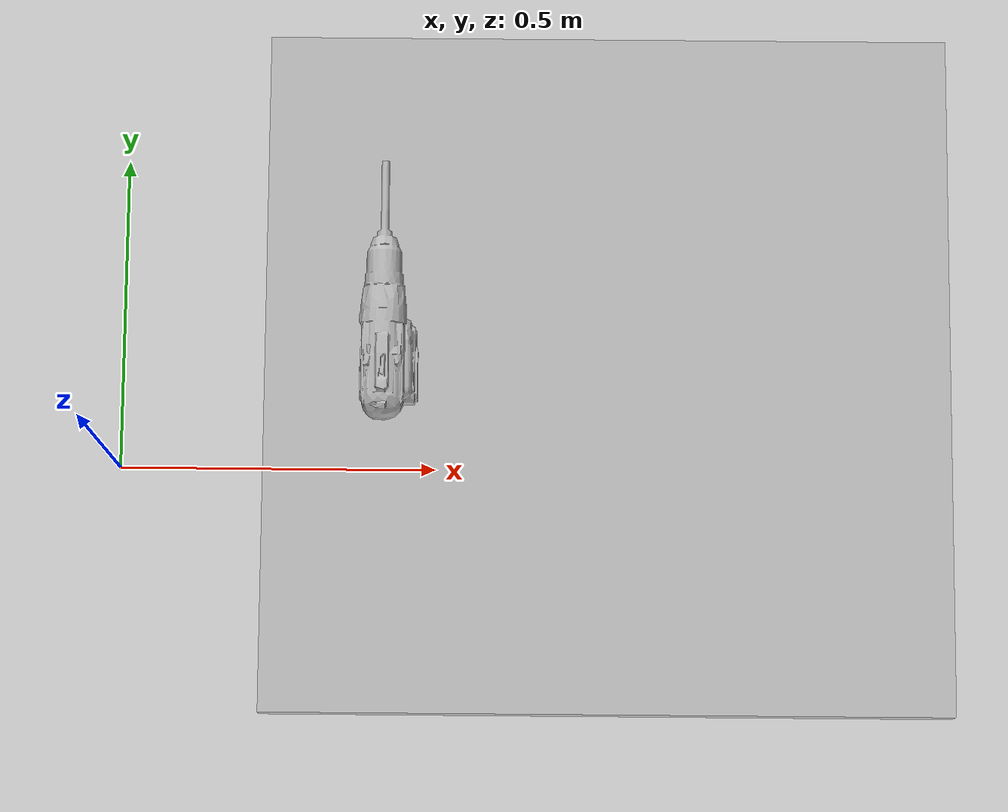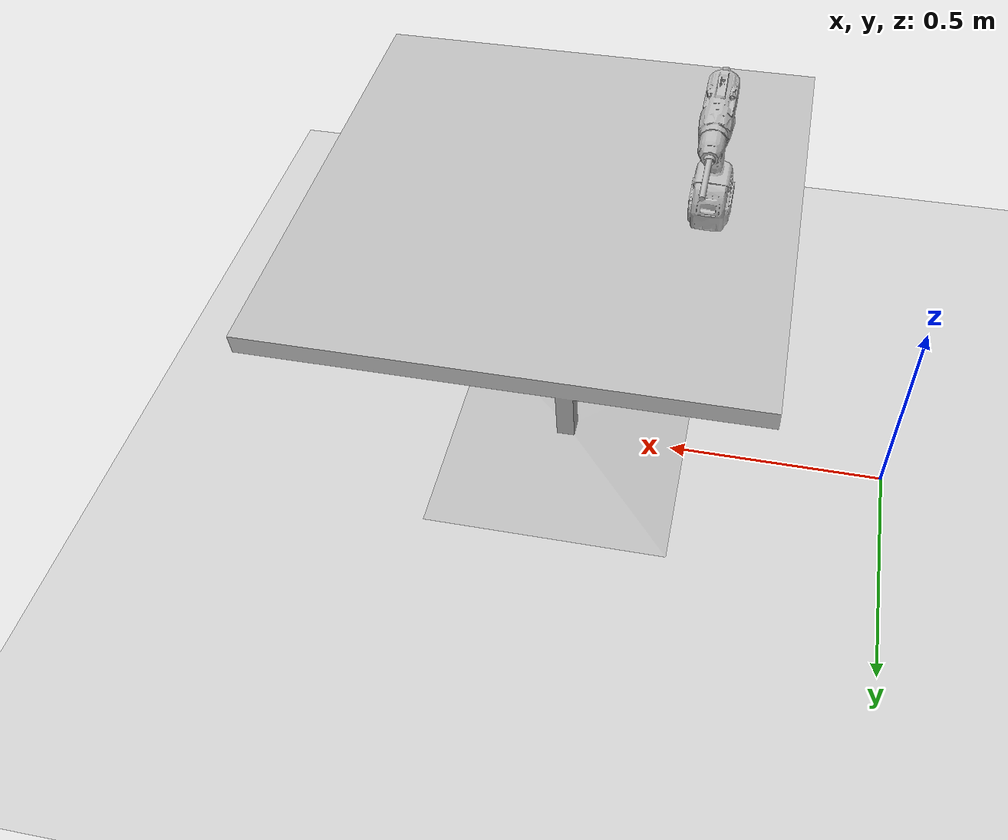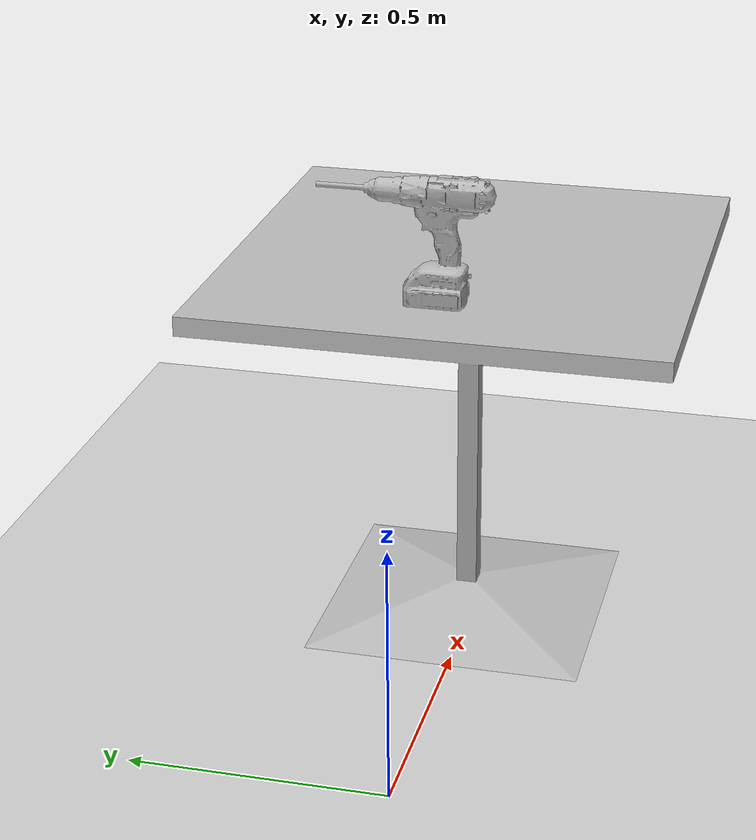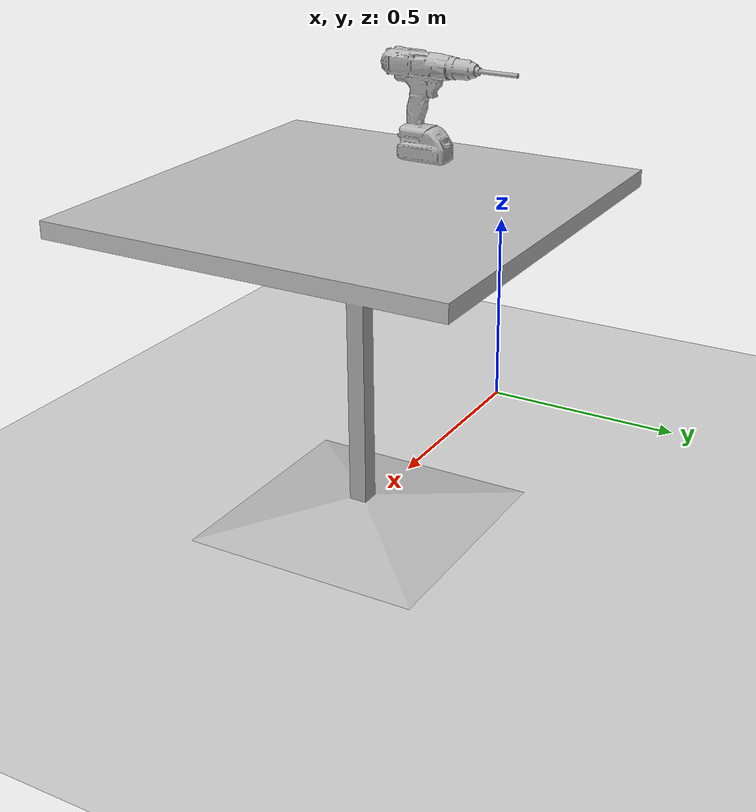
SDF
<?xml version="1.0" ?>
<sdf version="1.4">
  <world name="default">
    <!-- A global light source -->
    <include>
      <uri>model://sun</uri>
    </include>
    <!-- A ground plane -->
    <include>
      <uri>model://ground_plane</uri>
    </include>
    <model name='cafe_table'>
      <static>1</static>
      <link name='link'>
        <collision name='surface'>
          <pose>0 0 0.755 0 -0 0</pose>
          <geometry>
            <box>
              <size>0.913 0.913 0.04</size>
            </box>
          </geometry>
          <max_contacts>10</max_contacts>
          <surface>
            <contact>
              <ode/>
            </contact>
            <bounce/>
            <friction>
              <ode/>
            </friction>
          </surface>
        </collision>
        <collision name='column'>
          <pose>0 0 0.37 0 -0 0</pose>
          <geometry>
            <box>
              <size>0.042 0.042 0.74</size>
            </box>
          </geometry>
          <max_contacts>10</max_contacts>
          <surface>
            <contact>
              <ode/>
            </contact>
            <bounce/>
            <friction>
              <ode/>
            </friction>
          </surface>
        </collision>
        <collision name='base'>
          <pose>0 0 0.02 0 -0 0</pose>
          <geometry>
            <box>
              <size>0.56 0.56 0.04</size>
            </box>
          </geometry>
          <max_contacts>10</max_contacts>
          <surface>
            <contact>
              <ode/>
            </contact>
            <bounce/>
            <friction>
              <ode/>
            </friction>
          </surface>
        </collision>
        <visual name='visual'>
          <geometry>
            <mesh>
              <uri>model://cafe_table/meshes/cafe_table.dae</uri>
            </mesh>
          </geometry>
        </visual>
        <self_collide>0</self_collide>
        <kinematic>0</kinematic>
        <gravity>1</gravity>
      </link>
      <pose>0.746172 0.018912 0 0 -0 0</pose>
    </model>
    <include>
      <uri>model://DRC_drill</uri>
      <name>drc_drill</name>
      <pose>0.455768 0 0.9 0 0 1.57</pose>
    </include>
  </world>
</sdf>

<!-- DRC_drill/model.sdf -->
<sdf version="1.4">
  <model name="drill">
    <link name="link">
      <inertial>
        <pose>0 0 0 0 0 0</pose>
        <inertia>
          <ixx>0.009</ixx>
          <ixy>0.0</ixy>
          <ixz>0.0</ixz>
          <iyy>0.012</iyy>
          <iyz>0.0</iyz>
          <izz>0.003</izz>
        </inertia>
        <mass>1.50251902</mass>
      </inertial>
      <collision name="collision">
        <pose>0 0 0 0 0 0</pose>
        <geometry>
          <mesh>
            <uri>model://DRC_drill/meshes/DRC_drill.stl</uri>
          </mesh>
        </geometry>
        <surface>
          <contact>
            <ode>
              <max_vel>0.1</max_vel>
              <min_depth>0.001</min_depth>
            </ode>
          </contact>
        </surface>
      </collision>
      <visual name="visual">
        <pose>0 0 0 0 0 0</pose>
        <geometry>
          <mesh>
            <uri>model://DRC_drill/meshes/DRC_drill.dae</uri>
          </mesh>
        </geometry>
      </visual>
    </link>
  </model>
</sdf>
